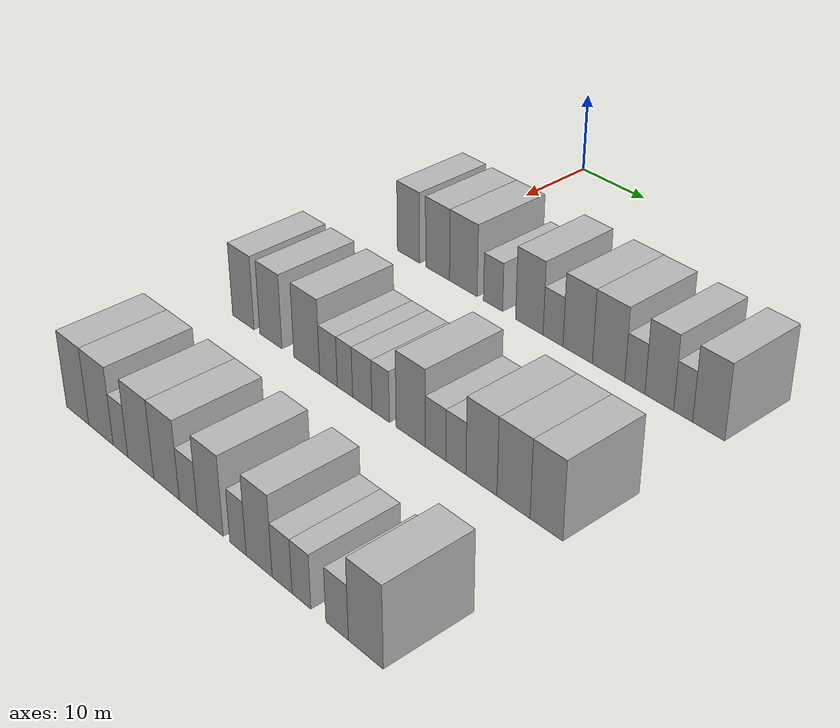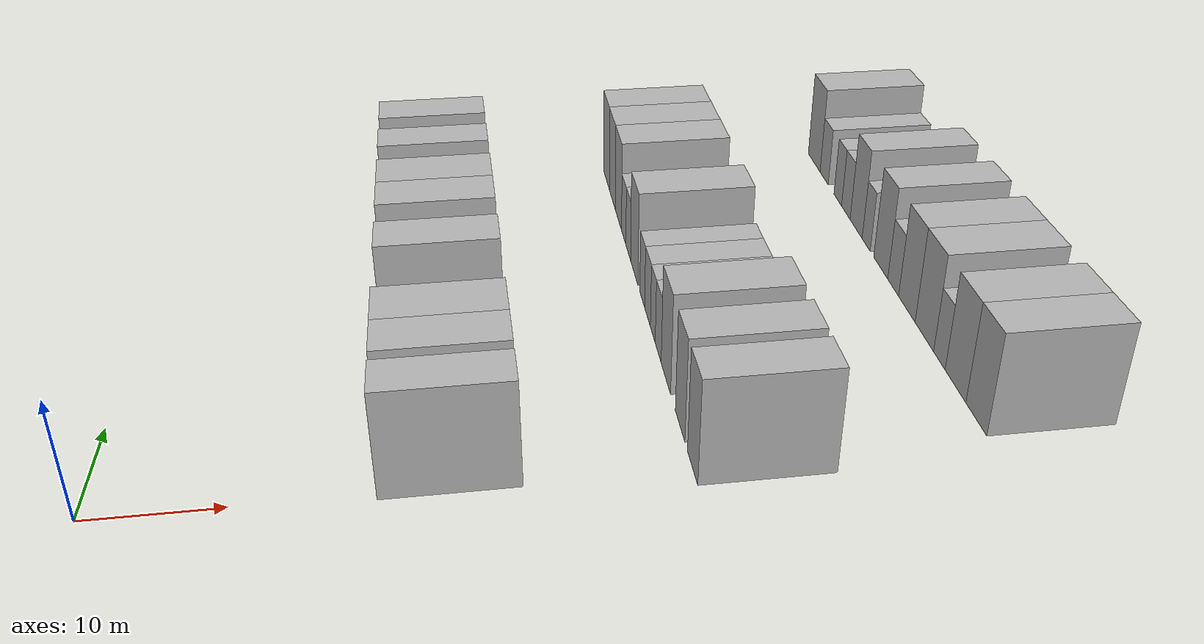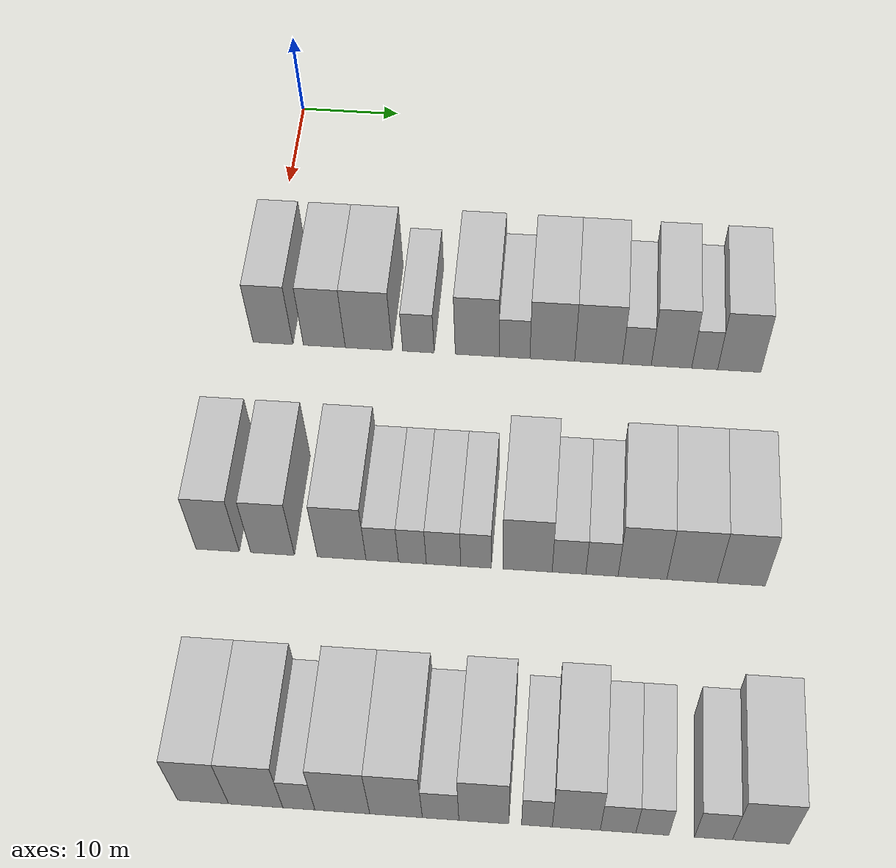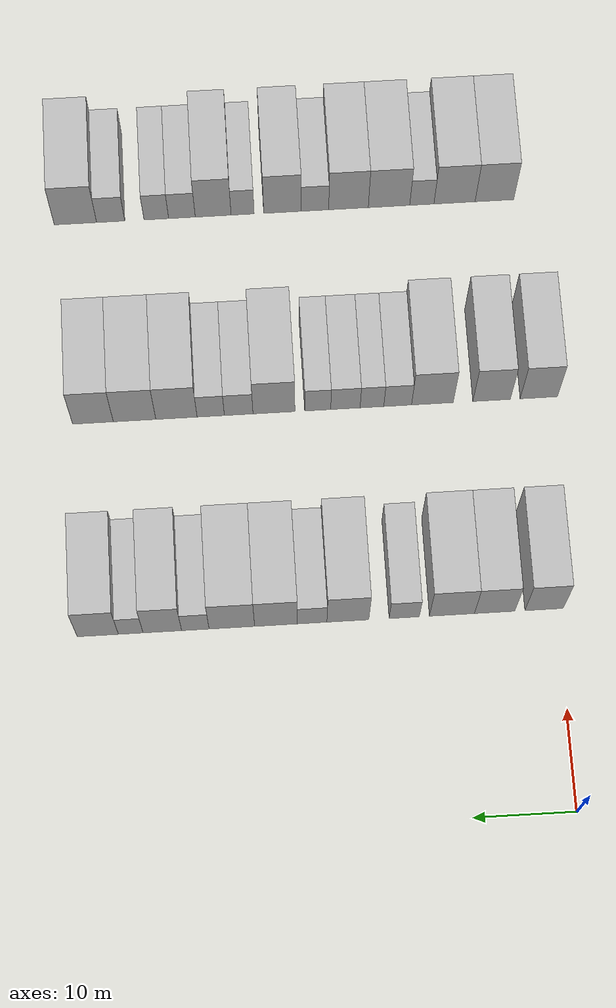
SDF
<sdf version="1.6">
 <world name="default">
  <model name="building_67">
   <static>1</static>
   <pose>25.0000 1.3086 0 0.000000 0.000000 0.000000</pose>
   <link name="link">
    <pose>0 0 4.50 0 0 0</pose>
    <collision name="collision"><geometry><box><size>10.0000 3.7959 9.0000</size></box></geometry></collision>
    <visual name="visual">
     <cast_shadows>0</cast_shadows>
     <geometry><box><size>10.0000 3.7959 9.0000</size></box></geometry>
     <material>
      <script>
       <uri>model://HANNAS_wall/materials/scripts</uri>
       <uri>model://HANNAS_wall/materials/textures</uri>
       <name>vrc/HANNAS_wall</name>
      </script>
     </material>
    </visual>
   </link>
  </model>
  <model name="building_68">
   <static>1</static>
   <pose>25.0000 6.1942 0 0.000000 0.000000 0.000000</pose>
   <link name="link">
    <pose>0 0 4.50 0 0 0</pose>
    <collision name="collision"><geometry><box><size>10.0000 3.9752 9.0000</size></box></geometry></collision>
    <visual name="visual">
     <cast_shadows>0</cast_shadows>
     <geometry><box><size>10.0000 3.9752 9.0000</size></box></geometry>
     <material>
      <script>
       <uri>model://HANNAS_wall/materials/scripts</uri>
       <uri>model://HANNAS_wall/materials/textures</uri>
       <name>vrc/HANNAS_wall</name>
      </script>
     </material>
    </visual>
   </link>
  </model>
  <model name="building_69">
   <static>1</static>
   <pose>25.0000 10.4083 0 0.000000 0.000000 0.000000</pose>
   <link name="link">
    <pose>0 0 4.50 0 0 0</pose>
    <collision name="collision"><geometry><box><size>10.0000 4.4530 9.0000</size></box></geometry></collision>
    <visual name="visual">
     <cast_shadows>0</cast_shadows>
     <geometry><box><size>10.0000 4.4530 9.0000</size></box></geometry>
     <material>
      <script>
       <uri>model://HANNAS_wall/materials/scripts</uri>
       <uri>model://HANNAS_wall/materials/textures</uri>
       <name>vrc/HANNAS_wall</name>
      </script>
     </material>
    </visual>
   </link>
  </model>
  <model name="building_70">
   <static>1</static>
   <pose>25.0000 15.1208 0 0.000000 0.000000 0.000000</pose>
   <link name="link">
    <pose>0 0 3.00 0 0 0</pose>
    <collision name="collision"><geometry><box><size>10.0000 2.9721 6.0000</size></box></geometry></collision>
    <visual name="visual">
     <cast_shadows>0</cast_shadows>
     <geometry><box><size>10.0000 2.9721 6.0000</size></box></geometry>
     <material>
      <script>
       <uri>model://HANNAS_wall/materials/scripts</uri>
       <uri>model://HANNAS_wall/materials/textures</uri>
       <name>vrc/HANNAS_wall</name>
      </script>
     </material>
    </visual>
   </link>
  </model>
  <model name="building_71">
   <static>1</static>
   <pose>25.0000 20.6719 0 0.000000 0.000000 0.000000</pose>
   <link name="link">
    <pose>0 0 4.50 0 0 0</pose>
    <collision name="collision"><geometry><box><size>10.0000 4.1301 9.0000</size></box></geometry></collision>
    <visual name="visual">
     <cast_shadows>0</cast_shadows>
     <geometry><box><size>10.0000 4.1301 9.0000</size></box></geometry>
     <material>
      <script>
       <uri>model://HANNAS_wall/materials/scripts</uri>
       <uri>model://HANNAS_wall/materials/textures</uri>
       <name>vrc/HANNAS_wall</name>
      </script>
     </material>
    </visual>
   </link>
  </model>
  <model name="building_72">
   <static>1</static>
   <pose>25.0000 24.1890 0 0.000000 0.000000 0.000000</pose>
   <link name="link">
    <pose>0 0 3.00 0 0 0</pose>
    <collision name="collision"><geometry><box><size>10.0000 2.9042 6.0000</size></box></geometry></collision>
    <visual name="visual">
     <cast_shadows>0</cast_shadows>
     <geometry><box><size>10.0000 2.9042 6.0000</size></box></geometry>
     <material>
      <script>
       <uri>model://HANNAS_wall/materials/scripts</uri>
       <uri>model://HANNAS_wall/materials/textures</uri>
       <name>vrc/HANNAS_wall</name>
      </script>
     </material>
    </visual>
   </link>
  </model>
  <model name="building_73">
   <static>1</static>
   <pose>25.0000 27.7432 0 0.000000 0.000000 0.000000</pose>
   <link name="link">
    <pose>0 0 4.50 0 0 0</pose>
    <collision name="collision"><geometry><box><size>10.0000 4.2041 9.0000</size></box></geometry></collision>
    <visual name="visual">
     <cast_shadows>0</cast_shadows>
     <geometry><box><size>10.0000 4.2041 9.0000</size></box></geometry>
     <material>
      <script>
       <uri>model://HANNAS_wall/materials/scripts</uri>
       <uri>model://HANNAS_wall/materials/textures</uri>
       <name>vrc/HANNAS_wall</name>
      </script>
     </material>
    </visual>
   </link>
  </model>
  <model name="building_74">
   <static>1</static>
   <pose>25.0000 32.0811 0 0.000000 0.000000 0.000000</pose>
   <link name="link">
    <pose>0 0 4.50 0 0 0</pose>
    <collision name="collision"><geometry><box><size>10.0000 4.4717 9.0000</size></box></geometry></collision>
    <visual name="visual">
     <cast_shadows>0</cast_shadows>
     <geometry><box><size>10.0000 4.4717 9.0000</size></box></geometry>
     <material>
      <script>
       <uri>model://HANNAS_wall/materials/scripts</uri>
       <uri>model://HANNAS_wall/materials/textures</uri>
       <name>vrc/HANNAS_wall</name>
      </script>
     </material>
    </visual>
   </link>
  </model>
  <model name="building_75">
   <static>1</static>
   <pose>25.0000 35.6679 0 0.000000 0.000000 0.000000</pose>
   <link name="link">
    <pose>0 0 3.00 0 0 0</pose>
    <collision name="collision"><geometry><box><size>10.0000 2.7019 6.0000</size></box></geometry></collision>
    <visual name="visual">
     <cast_shadows>0</cast_shadows>
     <geometry><box><size>10.0000 2.7019 6.0000</size></box></geometry>
     <material>
      <script>
       <uri>model://HANNAS_wall/materials/scripts</uri>
       <uri>model://HANNAS_wall/materials/textures</uri>
       <name>vrc/HANNAS_wall</name>
      </script>
     </material>
    </visual>
   </link>
  </model>
  <model name="building_76">
   <static>1</static>
   <pose>25.0000 38.9119 0 0.000000 0.000000 0.000000</pose>
   <link name="link">
    <pose>0 0 4.50 0 0 0</pose>
    <collision name="collision"><geometry><box><size>10.0000 3.7861 9.0000</size></box></geometry></collision>
    <visual name="visual">
     <cast_shadows>0</cast_shadows>
     <geometry><box><size>10.0000 3.7861 9.0000</size></box></geometry>
     <material>
      <script>
       <uri>model://HANNAS_wall/materials/scripts</uri>
       <uri>model://HANNAS_wall/materials/textures</uri>
       <name>vrc/HANNAS_wall</name>
      </script>
     </material>
    </visual>
   </link>
  </model>
  <model name="building_77">
   <static>1</static>
   <pose>25.0000 42.0162 0 0.000000 0.000000 0.000000</pose>
   <link name="link">
    <pose>0 0 3.00 0 0 0</pose>
    <collision name="collision"><geometry><box><size>10.0000 2.4225 6.0000</size></box></geometry></collision>
    <visual name="visual">
     <cast_shadows>0</cast_shadows>
     <geometry><box><size>10.0000 2.4225 6.0000</size></box></geometry>
     <material>
      <script>
       <uri>model://HANNAS_wall/materials/scripts</uri>
       <uri>model://HANNAS_wall/materials/textures</uri>
       <name>vrc/HANNAS_wall</name>
      </script>
     </material>
    </visual>
   </link>
  </model>
  <model name="building_78">
   <static>1</static>
   <pose>25.0000 45.2444 0 0.000000 0.000000 0.000000</pose>
   <link name="link">
    <pose>0 0 4.50 0 0 0</pose>
    <collision name="collision"><geometry><box><size>10.0000 4.0340 9.0000</size></box></geometry></collision>
    <visual name="visual">
     <cast_shadows>0</cast_shadows>
     <geometry><box><size>10.0000 4.0340 9.0000</size></box></geometry>
     <material>
      <script>
       <uri>model://HANNAS_wall/materials/scripts</uri>
       <uri>model://HANNAS_wall/materials/textures</uri>
       <name>vrc/HANNAS_wall</name>
      </script>
     </material>
    </visual>
   </link>
  </model>
  <model name="building_193">
   <static>1</static>
   <pose>47.0000 -0.2139 0 0.000000 0.000000 0.000000</pose>
   <link name="link">
    <pose>0 0 4.50 0 0 0</pose>
    <collision name="collision"><geometry><box><size>10.0000 3.7965 9.0000</size></box></geometry></collision>
    <visual name="visual">
     <cast_shadows>0</cast_shadows>
     <geometry><box><size>10.0000 3.7965 9.0000</size></box></geometry>
     <material>
      <script>
       <uri>model://HANNAS_wall/materials/scripts</uri>
       <uri>model://HANNAS_wall/materials/textures</uri>
       <name>vrc/HANNAS_wall</name>
      </script>
     </material>
    </visual>
   </link>
  </model>
  <model name="building_194">
   <static>1</static>
   <pose>47.0000 4.5946 0 0.000000 0.000000 0.000000</pose>
   <link name="link">
    <pose>0 0 4.50 0 0 0</pose>
    <collision name="collision"><geometry><box><size>10.0000 3.8204 9.0000</size></box></geometry></collision>
    <visual name="visual">
     <cast_shadows>0</cast_shadows>
     <geometry><box><size>10.0000 3.8204 9.0000</size></box></geometry>
     <material>
      <script>
       <uri>model://HANNAS_wall/materials/scripts</uri>
       <uri>model://HANNAS_wall/materials/textures</uri>
       <name>vrc/HANNAS_wall</name>
      </script>
     </material>
    </visual>
   </link>
  </model>
  <model name="building_195">
   <static>1</static>
   <pose>47.0000 10.6218 0 0.000000 0.000000 0.000000</pose>
   <link name="link">
    <pose>0 0 4.50 0 0 0</pose>
    <collision name="collision"><geometry><box><size>10.0000 4.2340 9.0000</size></box></geometry></collision>
    <visual name="visual">
     <cast_shadows>0</cast_shadows>
     <geometry><box><size>10.0000 4.2340 9.0000</size></box></geometry>
     <material>
      <script>
       <uri>model://HANNAS_wall/materials/scripts</uri>
       <uri>model://HANNAS_wall/materials/textures</uri>
       <name>vrc/HANNAS_wall</name>
      </script>
     </material>
    </visual>
   </link>
  </model>
  <model name="building_196">
   <static>1</static>
   <pose>47.0000 14.1522 0 0.000000 0.000000 0.000000</pose>
   <link name="link">
    <pose>0 0 3.00 0 0 0</pose>
    <collision name="collision"><geometry><box><size>10.0000 2.8268 6.0000</size></box></geometry></collision>
    <visual name="visual">
     <cast_shadows>0</cast_shadows>
     <geometry><box><size>10.0000 2.8268 6.0000</size></box></geometry>
     <material>
      <script>
       <uri>model://HANNAS_wall/materials/scripts</uri>
       <uri>model://HANNAS_wall/materials/textures</uri>
       <name>vrc/HANNAS_wall</name>
      </script>
     </material>
    </visual>
   </link>
  </model>
  <model name="building_197">
   <static>1</static>
   <pose>47.0000 16.7693 0 0.000000 0.000000 0.000000</pose>
   <link name="link">
    <pose>0 0 3.00 0 0 0</pose>
    <collision name="collision"><geometry><box><size>10.0000 2.4074 6.0000</size></box></geometry></collision>
    <visual name="visual">
     <cast_shadows>0</cast_shadows>
     <geometry><box><size>10.0000 2.4074 6.0000</size></box></geometry>
     <material>
      <script>
       <uri>model://HANNAS_wall/materials/scripts</uri>
       <uri>model://HANNAS_wall/materials/textures</uri>
       <name>vrc/HANNAS_wall</name>
      </script>
     </material>
    </visual>
   </link>
  </model>
  <model name="building_198">
   <static>1</static>
   <pose>47.0000 19.4650 0 0.000000 0.000000 0.000000</pose>
   <link name="link">
    <pose>0 0 3.00 0 0 0</pose>
    <collision name="collision"><geometry><box><size>10.0000 2.9840 6.0000</size></box></geometry></collision>
    <visual name="visual">
     <cast_shadows>0</cast_shadows>
     <geometry><box><size>10.0000 2.9840 6.0000</size></box></geometry>
     <material>
      <script>
       <uri>model://HANNAS_wall/materials/scripts</uri>
       <uri>model://HANNAS_wall/materials/textures</uri>
       <name>vrc/HANNAS_wall</name>
      </script>
     </material>
    </visual>
   </link>
  </model>
  <model name="building_199">
   <static>1</static>
   <pose>47.0000 22.2750 0 0.000000 0.000000 0.000000</pose>
   <link name="link">
    <pose>0 0 3.00 0 0 0</pose>
    <collision name="collision"><geometry><box><size>10.0000 2.6359 6.0000</size></box></geometry></collision>
    <visual name="visual">
     <cast_shadows>0</cast_shadows>
     <geometry><box><size>10.0000 2.6359 6.0000</size></box></geometry>
     <material>
      <script>
       <uri>model://HANNAS_wall/materials/scripts</uri>
       <uri>model://HANNAS_wall/materials/textures</uri>
       <name>vrc/HANNAS_wall</name>
      </script>
     </material>
    </visual>
   </link>
  </model>
  <model name="building_200">
   <static>1</static>
   <pose>47.0000 26.7189 0 0.000000 0.000000 0.000000</pose>
   <link name="link">
    <pose>0 0 4.50 0 0 0</pose>
    <collision name="collision"><geometry><box><size>10.0000 4.2521 9.0000</size></box></geometry></collision>
    <visual name="visual">
     <cast_shadows>0</cast_shadows>
     <geometry><box><size>10.0000 4.2521 9.0000</size></box></geometry>
     <material>
      <script>
       <uri>model://HANNAS_wall/materials/scripts</uri>
       <uri>model://HANNAS_wall/materials/textures</uri>
       <name>vrc/HANNAS_wall</name>
      </script>
     </material>
    </visual>
   </link>
  </model>
  <model name="building_201">
   <static>1</static>
   <pose>47.0000 30.2941 0 0.000000 0.000000 0.000000</pose>
   <link name="link">
    <pose>0 0 3.00 0 0 0</pose>
    <collision name="collision"><geometry><box><size>10.0000 2.8982 6.0000</size></box></geometry></collision>
    <visual name="visual">
     <cast_shadows>0</cast_shadows>
     <geometry><box><size>10.0000 2.8982 6.0000</size></box></geometry>
     <material>
      <script>
       <uri>model://HANNAS_wall/materials/scripts</uri>
       <uri>model://HANNAS_wall/materials/textures</uri>
       <name>vrc/HANNAS_wall</name>
      </script>
     </material>
    </visual>
   </link>
  </model>
  <model name="building_202">
   <static>1</static>
   <pose>47.0000 33.1275 0 0.000000 0.000000 0.000000</pose>
   <link name="link">
    <pose>0 0 3.00 0 0 0</pose>
    <collision name="collision"><geometry><box><size>10.0000 2.7687 6.0000</size></box></geometry></collision>
    <visual name="visual">
     <cast_shadows>0</cast_shadows>
     <geometry><box><size>10.0000 2.7687 6.0000</size></box></geometry>
     <material>
      <script>
       <uri>model://HANNAS_wall/materials/scripts</uri>
       <uri>model://HANNAS_wall/materials/textures</uri>
       <name>vrc/HANNAS_wall</name>
      </script>
     </material>
    </visual>
   </link>
  </model>
  <model name="building_203">
   <static>1</static>
   <pose>47.0000 36.6004 0 0.000000 0.000000 0.000000</pose>
   <link name="link">
    <pose>0 0 4.50 0 0 0</pose>
    <collision name="collision"><geometry><box><size>10.0000 4.1770 9.0000</size></box></geometry></collision>
    <visual name="visual">
     <cast_shadows>0</cast_shadows>
     <geometry><box><size>10.0000 4.1770 9.0000</size></box></geometry>
     <material>
      <script>
       <uri>model://HANNAS_wall/materials/scripts</uri>
       <uri>model://HANNAS_wall/materials/textures</uri>
       <name>vrc/HANNAS_wall</name>
      </script>
     </material>
    </visual>
   </link>
  </model>
  <model name="building_204">
   <static>1</static>
   <pose>47.0000 40.8419 0 0.000000 0.000000 0.000000</pose>
   <link name="link">
    <pose>0 0 4.50 0 0 0</pose>
    <collision name="collision"><geometry><box><size>10.0000 4.3059 9.0000</size></box></geometry></collision>
    <visual name="visual">
     <cast_shadows>0</cast_shadows>
     <geometry><box><size>10.0000 4.3059 9.0000</size></box></geometry>
     <material>
      <script>
       <uri>model://HANNAS_wall/materials/scripts</uri>
       <uri>model://HANNAS_wall/materials/textures</uri>
       <name>vrc/HANNAS_wall</name>
      </script>
     </material>
    </visual>
   </link>
  </model>
  <model name="building_205">
   <static>1</static>
   <pose>47.0000 45.0529 0 0.000000 0.000000 0.000000</pose>
   <link name="link">
    <pose>0 0 4.50 0 0 0</pose>
    <collision name="collision"><geometry><box><size>10.0000 4.1163 9.0000</size></box></geometry></collision>
    <visual name="visual">
     <cast_shadows>0</cast_shadows>
     <geometry><box><size>10.0000 4.1163 9.0000</size></box></geometry>
     <material>
      <script>
       <uri>model://HANNAS_wall/materials/scripts</uri>
       <uri>model://HANNAS_wall/materials/textures</uri>
       <name>vrc/HANNAS_wall</name>
      </script>
     </material>
    </visual>
   </link>
  </model>
  <model name="building_310">
   <static>1</static>
   <pose>69.0000 2.3958 0 0.000000 0.000000 0.000000</pose>
   <link name="link">
    <pose>0 0 4.50 0 0 0</pose>
    <collision name="collision"><geometry><box><size>10.0000 4.0535 9.0000</size></box></geometry></collision>
    <visual name="visual">
     <cast_shadows>0</cast_shadows>
     <geometry><box><size>10.0000 4.0535 9.0000</size></box></geometry>
     <material>
      <script>
       <uri>model://HANNAS_wall/materials/scripts</uri>
       <uri>model://HANNAS_wall/materials/textures</uri>
       <name>vrc/HANNAS_wall</name>
      </script>
     </material>
    </visual>
   </link>
  </model>
  <model name="building_311">
   <static>1</static>
   <pose>69.0000 6.5796 0 0.000000 0.000000 0.000000</pose>
   <link name="link">
    <pose>0 0 4.50 0 0 0</pose>
    <collision name="collision"><geometry><box><size>10.0000 4.3141 9.0000</size></box></geometry></collision>
    <visual name="visual">
     <cast_shadows>0</cast_shadows>
     <geometry><box><size>10.0000 4.3141 9.0000</size></box></geometry>
     <material>
      <script>
       <uri>model://HANNAS_wall/materials/scripts</uri>
       <uri>model://HANNAS_wall/materials/textures</uri>
       <name>vrc/HANNAS_wall</name>
      </script>
     </material>
    </visual>
   </link>
  </model>
  <model name="building_312">
   <static>1</static>
   <pose>69.0000 10.0082 0 0.000000 0.000000 0.000000</pose>
   <link name="link">
    <pose>0 0 3.00 0 0 0</pose>
    <collision name="collision"><geometry><box><size>10.0000 2.5432 6.0000</size></box></geometry></collision>
    <visual name="visual">
     <cast_shadows>0</cast_shadows>
     <geometry><box><size>10.0000 2.5432 6.0000</size></box></geometry>
     <material>
      <script>
       <uri>model://HANNAS_wall/materials/scripts</uri>
       <uri>model://HANNAS_wall/materials/textures</uri>
       <name>vrc/HANNAS_wall</name>
      </script>
     </material>
    </visual>
   </link>
  </model>
  <model name="building_313">
   <static>1</static>
   <pose>69.0000 13.4496 0 0.000000 0.000000 0.000000</pose>
   <link name="link">
    <pose>0 0 4.50 0 0 0</pose>
    <collision name="collision"><geometry><box><size>10.0000 4.3396 9.0000</size></box></geometry></collision>
    <visual name="visual">
     <cast_shadows>0</cast_shadows>
     <geometry><box><size>10.0000 4.3396 9.0000</size></box></geometry>
     <material>
      <script>
       <uri>model://HANNAS_wall/materials/scripts</uri>
       <uri>model://HANNAS_wall/materials/textures</uri>
       <name>vrc/HANNAS_wall</name>
      </script>
     </material>
    </visual>
   </link>
  </model>
  <model name="building_314">
   <static>1</static>
   <pose>69.0000 17.6932 0 0.000000 0.000000 0.000000</pose>
   <link name="link">
    <pose>0 0 4.50 0 0 0</pose>
    <collision name="collision"><geometry><box><size>10.0000 4.1477 9.0000</size></box></geometry></collision>
    <visual name="visual">
     <cast_shadows>0</cast_shadows>
     <geometry><box><size>10.0000 4.1477 9.0000</size></box></geometry>
     <material>
      <script>
       <uri>model://HANNAS_wall/materials/scripts</uri>
       <uri>model://HANNAS_wall/materials/textures</uri>
       <name>vrc/HANNAS_wall</name>
      </script>
     </material>
    </visual>
   </link>
  </model>
  <model name="building_315">
   <static>1</static>
   <pose>69.0000 21.2041 0 0.000000 0.000000 0.000000</pose>
   <link name="link">
    <pose>0 0 3.00 0 0 0</pose>
    <collision name="collision"><geometry><box><size>10.0000 2.8740 6.0000</size></box></geometry></collision>
    <visual name="visual">
     <cast_shadows>0</cast_shadows>
     <geometry><box><size>10.0000 2.8740 6.0000</size></box></geometry>
     <material>
      <script>
       <uri>model://HANNAS_wall/materials/scripts</uri>
       <uri>model://HANNAS_wall/materials/textures</uri>
       <name>vrc/HANNAS_wall</name>
      </script>
     </material>
    </visual>
   </link>
  </model>
  <model name="building_316">
   <static>1</static>
   <pose>69.0000 24.6007 0 0.000000 0.000000 0.000000</pose>
   <link name="link">
    <pose>0 0 4.50 0 0 0</pose>
    <collision name="collision"><geometry><box><size>10.0000 3.9194 9.0000</size></box></geometry></collision>
    <visual name="visual">
     <cast_shadows>0</cast_shadows>
     <geometry><box><size>10.0000 3.9194 9.0000</size></box></geometry>
     <material>
      <script>
       <uri>model://HANNAS_wall/materials/scripts</uri>
       <uri>model://HANNAS_wall/materials/textures</uri>
       <name>vrc/HANNAS_wall</name>
      </script>
     </material>
    </visual>
   </link>
  </model>
  <model name="building_317">
   <static>1</static>
   <pose>69.0000 28.7644 0 0.000000 0.000000 0.000000</pose>
   <link name="link">
    <pose>0 0 3.00 0 0 0</pose>
    <collision name="collision"><geometry><box><size>10.0000 2.4079 6.0000</size></box></geometry></collision>
    <visual name="visual">
     <cast_shadows>0</cast_shadows>
     <geometry><box><size>10.0000 2.4079 6.0000</size></box></geometry>
     <material>
      <script>
       <uri>model://HANNAS_wall/materials/scripts</uri>
       <uri>model://HANNAS_wall/materials/textures</uri>
       <name>vrc/HANNAS_wall</name>
      </script>
     </material>
    </visual>
   </link>
  </model>
  <model name="building_318">
   <static>1</static>
   <pose>69.0000 31.8381 0 0.000000 0.000000 0.000000</pose>
   <link name="link">
    <pose>0 0 4.50 0 0 0</pose>
    <collision name="collision"><geometry><box><size>10.0000 3.7396 9.0000</size></box></geometry></collision>
    <visual name="visual">
     <cast_shadows>0</cast_shadows>
     <geometry><box><size>10.0000 3.7396 9.0000</size></box></geometry>
     <material>
      <script>
       <uri>model://HANNAS_wall/materials/scripts</uri>
       <uri>model://HANNAS_wall/materials/textures</uri>
       <name>vrc/HANNAS_wall</name>
      </script>
     </material>
    </visual>
   </link>
  </model>
  <model name="building_319">
   <static>1</static>
   <pose>69.0000 35.1005 0 0.000000 0.000000 0.000000</pose>
   <link name="link">
    <pose>0 0 3.00 0 0 0</pose>
    <collision name="collision"><geometry><box><size>10.0000 2.7852 6.0000</size></box></geometry></collision>
    <visual name="visual">
     <cast_shadows>0</cast_shadows>
     <geometry><box><size>10.0000 2.7852 6.0000</size></box></geometry>
     <material>
      <script>
       <uri>model://HANNAS_wall/materials/scripts</uri>
       <uri>model://HANNAS_wall/materials/textures</uri>
       <name>vrc/HANNAS_wall</name>
      </script>
     </material>
    </visual>
   </link>
  </model>
  <model name="building_320">
   <static>1</static>
   <pose>69.0000 37.7787 0 0.000000 0.000000 0.000000</pose>
   <link name="link">
    <pose>0 0 3.00 0 0 0</pose>
    <collision name="collision"><geometry><box><size>10.0000 2.5713 6.0000</size></box></geometry></collision>
    <visual name="visual">
     <cast_shadows>0</cast_shadows>
     <geometry><box><size>10.0000 2.5713 6.0000</size></box></geometry>
     <material>
      <script>
       <uri>model://HANNAS_wall/materials/scripts</uri>
       <uri>model://HANNAS_wall/materials/textures</uri>
       <name>vrc/HANNAS_wall</name>
      </script>
     </material>
    </visual>
   </link>
  </model>
  <model name="building_321">
   <static>1</static>
   <pose>69.0000 42.5335 0 0.000000 0.000000 0.000000</pose>
   <link name="link">
    <pose>0 0 3.00 0 0 0</pose>
    <collision name="collision"><geometry><box><size>10.0000 2.9384 6.0000</size></box></geometry></collision>
    <visual name="visual">
     <cast_shadows>0</cast_shadows>
     <geometry><box><size>10.0000 2.9384 6.0000</size></box></geometry>
     <material>
      <script>
       <uri>model://HANNAS_wall/materials/scripts</uri>
       <uri>model://HANNAS_wall/materials/textures</uri>
       <name>vrc/HANNAS_wall</name>
      </script>
     </material>
    </visual>
   </link>
  </model>
  <model name="building_322">
   <static>1</static>
   <pose>69.0000 46.2091 0 0.000000 0.000000 0.000000</pose>
   <link name="link">
    <pose>0 0 4.50 0 0 0</pose>
    <collision name="collision"><geometry><box><size>10.0000 4.4128 9.0000</size></box></geometry></collision>
    <visual name="visual">
     <cast_shadows>0</cast_shadows>
     <geometry><box><size>10.0000 4.4128 9.0000</size></box></geometry>
     <material>
      <script>
       <uri>model://HANNAS_wall/materials/scripts</uri>
       <uri>model://HANNAS_wall/materials/textures</uri>
       <name>vrc/HANNAS_wall</name>
      </script>
     </material>
    </visual>
   </link>
  </model>
 </world>
</sdf>
